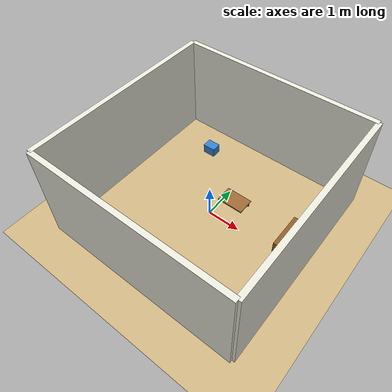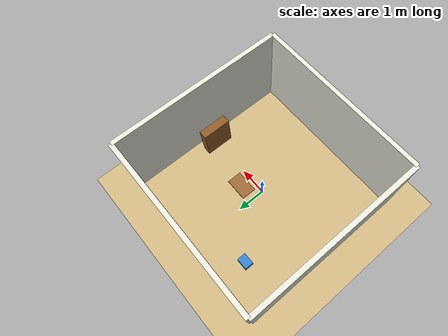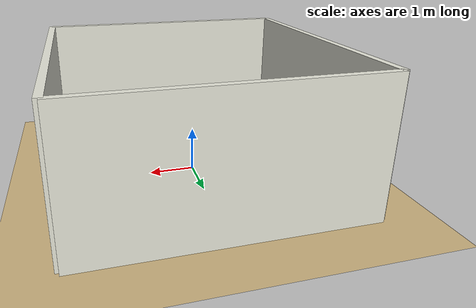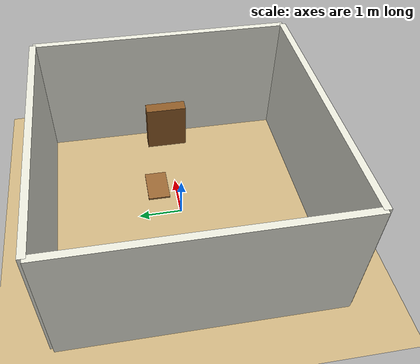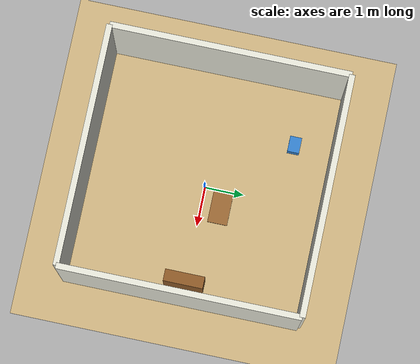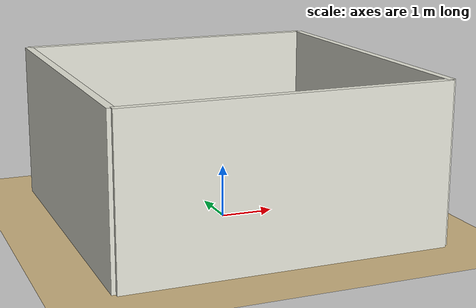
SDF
<?xml version="1.0" ?>
<!--
  简单客厅 Gazebo 仿真世界
  simulation_world/worlds/living_room.world

  包含: 地面、四面墙壁、天花板光源、几件简单家具(桌子、书架、收纳箱)
-->
<sdf version="1.6">
  <world name="living_room">

    <!-- 物理引擎 -->
    <physics name="default_physics" type="ode">
      <real_time_update_rate>1000</real_time_update_rate>
      <max_step_size>0.001</max_step_size>
      <real_time_factor>1.0</real_time_factor>
      <ode>
        <solver>
          <type>quick</type>
          <iters>50</iters>
          <sor>1.400000</sor>
          <use_dynamic_moi_rescaling>1</use_dynamic_moi_rescaling>
        </solver>
      </ode>
    </physics>

    <!-- 场景设置 -->
    <scene>
      <ambient>0.6 0.6 0.6 1.0</ambient>
      <background>0.8 0.9 1.0 1.0</background>
      <shadows>true</shadows>
    </scene>

    <!-- 太阳光源 -->
    <light name="sun" type="directional">
      <cast_shadows>true</cast_shadows>
      <pose>0 0 10 0 0 0</pose>
      <diffuse>0.9 0.9 0.9 1</diffuse>
      <specular>0.3 0.3 0.3 1</specular>
      <direction>-0.5 0.3 -1.0</direction>
      <attenuation>
        <range>1000</range>
        <constant>0.9</constant>
        <linear>0.01</linear>
        <quadratic>0.001</quadratic>
      </attenuation>
    </light>

    <!-- 室内点光源 -->
    <light name="ceiling_light" type="point">
      <pose>0 0 2.8 0 0 0</pose>
      <diffuse>0.8 0.8 0.7 1</diffuse>
      <specular>0.2 0.2 0.2 1</specular>
      <attenuation>
        <range>10</range>
        <constant>0.5</constant>
        <linear>0.1</linear>
        <quadratic>0.01</quadratic>
      </attenuation>
    </light>

    <!-- 地面 -->
    <model name="ground_plane">
      <static>true</static>
      <link name="link">
        <collision name="collision">
          <geometry>
            <plane>
              <normal>0 0 1</normal>
              <size>10 10</size>
            </plane>
          </geometry>
          <surface>
            <friction>
              <ode>
                <mu>100</mu>
                <mu2>50</mu2>
              </ode>
            </friction>
          </surface>
        </collision>
        <visual name="visual">
          <geometry>
            <plane>
              <normal>0 0 1</normal>
              <size>10 10</size>
            </plane>
          </geometry>
          <material>
            <ambient>0.8 0.7 0.5 1</ambient>
            <diffuse>0.8 0.7 0.5 1</diffuse>
          </material>
        </visual>
      </link>
    </model>

    <!-- 北墙 (Y+) -->
    <model name="wall_north">
      <static>true</static>
      <pose>0 3.0 1.5 0 0 0</pose>
      <link name="link">
        <collision name="collision">
          <geometry>
            <box><size>6.0 0.15 3.0</size></box>
          </geometry>
        </collision>
        <visual name="visual">
          <geometry>
            <box><size>6.0 0.15 3.0</size></box>
          </geometry>
          <material>
            <ambient>0.9 0.9 0.85 1</ambient>
            <diffuse>0.9 0.9 0.85 1</diffuse>
          </material>
        </visual>
      </link>
    </model>

    <!-- 南墙 (Y-) -->
    <model name="wall_south">
      <static>true</static>
      <pose>0 -3.0 1.5 0 0 0</pose>
      <link name="link">
        <collision name="collision">
          <geometry>
            <box><size>6.0 0.15 3.0</size></box>
          </geometry>
        </collision>
        <visual name="visual">
          <geometry>
            <box><size>6.0 0.15 3.0</size></box>
          </geometry>
          <material>
            <ambient>0.9 0.9 0.85 1</ambient>
            <diffuse>0.9 0.9 0.85 1</diffuse>
          </material>
        </visual>
      </link>
    </model>

    <!-- 东墙 (X+) -->
    <model name="wall_east">
      <static>true</static>
      <pose>3.0 0 1.5 0 0 1.5708</pose>
      <link name="link">
        <collision name="collision">
          <geometry>
            <box><size>6.0 0.15 3.0</size></box>
          </geometry>
        </collision>
        <visual name="visual">
          <geometry>
            <box><size>6.0 0.15 3.0</size></box>
          </geometry>
          <material>
            <ambient>0.9 0.9 0.85 1</ambient>
            <diffuse>0.9 0.9 0.85 1</diffuse>
          </material>
        </visual>
      </link>
    </model>

    <!-- 西墙 (X-) -->
    <model name="wall_west">
      <static>true</static>
      <pose>-3.0 0 1.5 0 0 1.5708</pose>
      <link name="link">
        <collision name="collision">
          <geometry>
            <box><size>6.0 0.15 3.0</size></box>
          </geometry>
        </collision>
        <visual name="visual">
          <geometry>
            <box><size>6.0 0.15 3.0</size></box>
          </geometry>
          <material>
            <ambient>0.9 0.9 0.85 1</ambient>
            <diffuse>0.9 0.9 0.85 1</diffuse>
          </material>
        </visual>
      </link>
    </model>

    <!-- 咖啡桌 -->
    <model name="coffee_table">
      <static>true</static>
      <pose>0.5 0.5 0.25 0 0 0</pose>
      <link name="link">
        <!-- 桌面 -->
        <collision name="top_collision">
          <pose>0 0 0.2 0 0 0</pose>
          <geometry>
            <box><size>0.8 0.5 0.04</size></box>
          </geometry>
        </collision>
        <visual name="top_visual">
          <pose>0 0 0.2 0 0 0</pose>
          <geometry>
            <box><size>0.8 0.5 0.04</size></box>
          </geometry>
          <material>
            <ambient>0.6 0.4 0.2 1</ambient>
            <diffuse>0.6 0.4 0.2 1</diffuse>
          </material>
        </visual>
        <!-- 桌腿 -->
        <collision name="leg1">
          <pose>0.35 0.2 0.1 0 0 0</pose>
          <geometry><cylinder><radius>0.02</radius><length>0.2</length></cylinder></geometry>
        </collision>
        <visual name="leg1_visual">
          <pose>0.35 0.2 0.1 0 0 0</pose>
          <geometry><cylinder><radius>0.02</radius><length>0.2</length></cylinder></geometry>
          <material>
            <ambient>0.5 0.3 0.15 1</ambient>
            <diffuse>0.5 0.3 0.15 1</diffuse>
          </material>
        </visual>
        <collision name="leg2">
          <pose>-0.35 0.2 0.1 0 0 0</pose>
          <geometry><cylinder><radius>0.02</radius><length>0.2</length></cylinder></geometry>
        </collision>
        <collision name="leg3">
          <pose>0.35 -0.2 0.1 0 0 0</pose>
          <geometry><cylinder><radius>0.02</radius><length>0.2</length></cylinder></geometry>
        </collision>
        <collision name="leg4">
          <pose>-0.35 -0.2 0.1 0 0 0</pose>
          <geometry><cylinder><radius>0.02</radius><length>0.2</length></cylinder></geometry>
        </collision>
      </link>
    </model>

    <!-- 收纳箱 -->
    <model name="storage_box">
      <static>true</static>
      <pose>-1.5 2.0 0.15 0 0 0</pose>
      <link name="link">
        <collision name="collision">
          <geometry>
            <box><size>0.4 0.3 0.3</size></box>
          </geometry>
        </collision>
        <visual name="visual">
          <geometry>
            <box><size>0.4 0.3 0.3</size></box>
          </geometry>
          <material>
            <ambient>0.2 0.5 0.8 1</ambient>
            <diffuse>0.2 0.5 0.8 1</diffuse>
          </material>
        </visual>
      </link>
    </model>

    <!-- 书架 -->
    <model name="bookshelf">
      <static>true</static>
      <pose>2.5 0 0.6 0 0 0</pose>
      <link name="link">
        <collision name="collision">
          <geometry>
            <box><size>0.3 1.0 1.2</size></box>
          </geometry>
        </collision>
        <visual name="visual">
          <geometry>
            <box><size>0.3 1.0 1.2</size></box>
          </geometry>
          <material>
            <ambient>0.55 0.35 0.15 1</ambient>
            <diffuse>0.55 0.35 0.15 1</diffuse>
          </material>
        </visual>
      </link>
    </model>

  </world>
</sdf>
